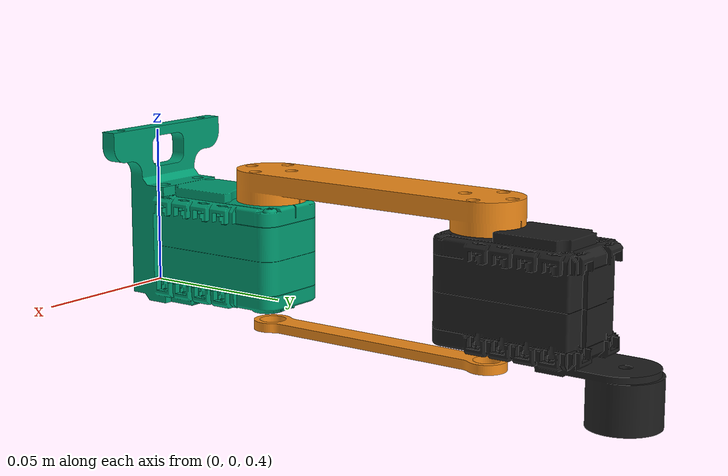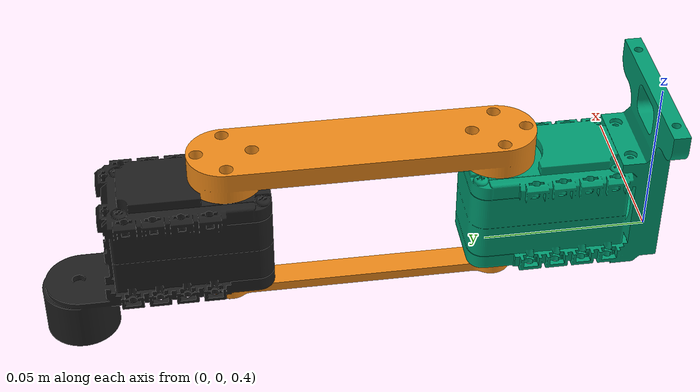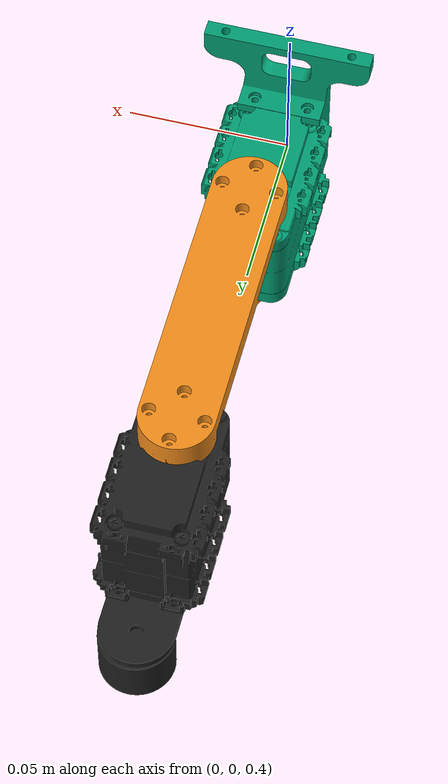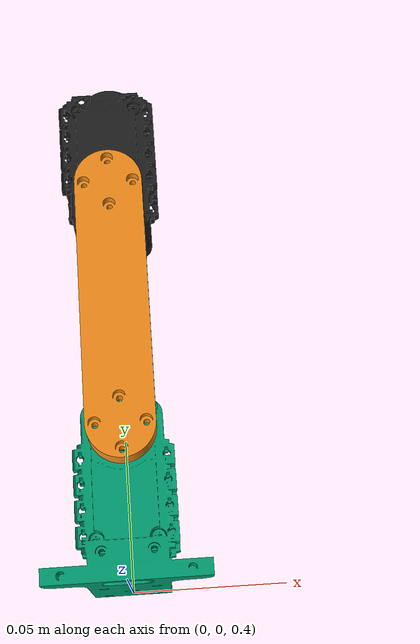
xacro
<robot name="scara_cpe" xmlns:xacro="http://ros.org/wiki/xacro" >

  <!-- Import all Gazebo-customization elements, including Gazebo colors -->
  <xacro:include filename="$(find scara_cpe_description)/urdf/scara_cpe.gazebo" />

  <xacro:property name="Base_LENGTH" value="0.06" />
  <xacro:property name="Link1_LENGTH" value="0.08" />
  <xacro:property name="Link2_LENGTH" value="0.047" />
  <xacro:property name="Base_HEIGHT" value="0.03" />
  <xacro:property name="Link2_HEIGHT" value="-0.025" />
  <xacro:property name="PI" value="3.14159265359" />
  <xacro:property name="PI_half" value="1.57079632679" />

  <!-- LINK -->

  <link name="world"/>

  <link name="camera_link">
  <inertial>
    <mass value="0.001" />
    <origin xyz="0 0 0" />
    <inertia ixx="0.0001" ixy="0.0" ixz="0.0"
             iyy="0.0001" iyz="0.0"
             izz="0.0001" />
    </inertial>
  </link>

  <link name="base_link">

    <visual>
      <origin xyz="0 0.034 0.38" rpy="-${PI_half} 0 -${PI_half}" />
      <geometry>
        <mesh filename="package://scara_cpe_description/urdf/scara_cpe-base_link.dae" scale="0.001 0.001 0.001"/>
      </geometry>
    </visual>

    <inertial>
      <origin xyz="0 0.025 0" rpy="0 0 0" />
      <mass value="0.1"/>
      <inertia
        ixx="0.0001" ixy="1e-12" ixz="1e-12"
        iyy="0.0001" iyz="1e-12"
        izz="0.0001"/>
    </inertial>

  </link>

  <link name="link1" >

    <visual>
      <origin xyz="0 -0.012 0.38" rpy="-${PI_half} 0 -${PI_half}" />
      <geometry>
        <mesh filename="package://scara_cpe_description/urdf/scara_cpe-link_1.dae" scale="0.001 0.001 0.001"/>
      </geometry>
    </visual>

    <collision>
      <origin xyz="0 ${Link1_LENGTH/2} 0" rpy="0 0 0" />
      <geometry>
        <box size="0.02 ${Link1_LENGTH/2} 0.05"/>
      </geometry>
    </collision>

    <inertial>
      <origin xyz="0 0.04 0" rpy="0 0 0" />
      <mass value="0.1"/>
      <inertia
        ixx="0.00003" ixy="1e-12" ixz="1e-12"
        iyy="0.00003" iyz="1e-12"
        izz="0.00003"/>
    </inertial>

  </link>

  <link name="link2" >

    <visual>
	  <origin xyz="0.0133 -0.092 0.38" rpy="-${PI_half} 0 -1.42579632679" />  <!-- -1.42579632679  - pi/2 + 0.145 -->
      <geometry>
        <mesh filename="package://scara_cpe_description/urdf/scara_cpe-link_2.dae" scale="0.001 0.001 0.001"/>
      </geometry>
    </visual>

    <collision>
      <origin xyz="0 ${Link2_LENGTH/2} 0" rpy="0 0 0" />
      <geometry>
        <box size="0.032 ${Link2_LENGTH} 0.06"/>
      </geometry>
    </collision>

    <inertial>
      <origin xyz="0 0.02 0" rpy="0 0 0" />
      <mass value="0.1"/>
      <inertia
        ixx="0.0001" ixy="1e-12" ixz="1e-12"
        iyy="0.0001" iyz="1e-12"
        izz="0.0001"/>
    </inertial>

  </link>

  <link name="end_link" >
  </link>

 <!-- JOINT -->

  <joint name="base_fixed" type="fixed">
    <parent link="world"/>
    <child link="base_link"/>
    <origin xyz="0 0 .035" rpy="0 0 0" />
  </joint>

  <joint name="camera_fixed" type="fixed">
    <parent link="world"/>
    <child link="camera_link"/>
    <origin xyz="0 -0.3 0.2" rpy="-${PI_half+0.3} 0 0" />
  </joint>

  <joint name="shoulder_1_joint" type="revolute">
    <parent link="base_link"/>
    <child link="link1"/>
    <origin xyz="0 0.048 0" rpy="0 0 0" />
	  <limit effort="1.5" velocity="1.0" lower="-${PI_half}" upper="${PI_half}" />
	  <axis xyz="0 0 1" />
  </joint>

  <joint name="shoulder_2_joint" type="revolute">
    <parent link="link1"/>
    <child link="link2"/>
    <origin xyz="0 0.08 0" rpy="0 0 0" />
	  <limit effort="1.5" velocity="1.0" lower="-2.8" upper="2.8" />
	  <axis xyz="0 0 -1" />
  </joint>

  <joint name="end_joint" type="fixed">
    <parent link="link2"/>
    <child link="end_link"/>
    <origin xyz="0 0.047 -0.025" rpy="0 0 0" />
  </joint>

  <transmission name="tran1">
    <type>SimpleTransmission</type>
    <joint name="shoulder_1_joint">
      <hardwareInterface>EffortJointInterface</hardwareInterface>
    </joint>
    <actuator name="motor1">
      <hardwareInterface>EffortJointInterface</hardwareInterface>
      <mechanicalReduction>1</mechanicalReduction>
    </actuator>
  </transmission>

  <transmission name="tran2">
    <type>SimpleTransmission</type>
    <joint name="shoulder_2_joint">
      <hardwareInterface>EffortJointInterface</hardwareInterface>
    </joint>
    <actuator name="motor2">
      <hardwareInterface>EffortJointInterface</hardwareInterface>
      <mechanicalReduction>1</mechanicalReduction>
    </actuator>
  </transmission>

</robot>
